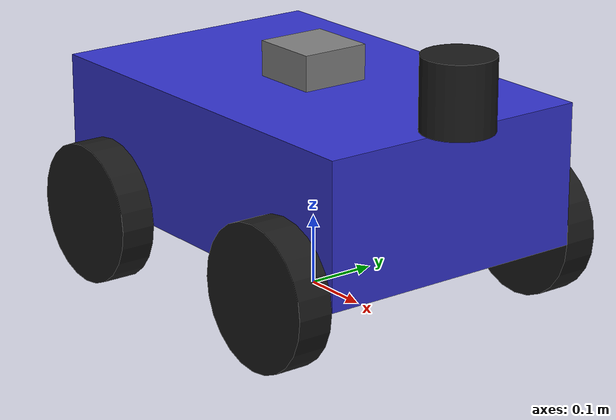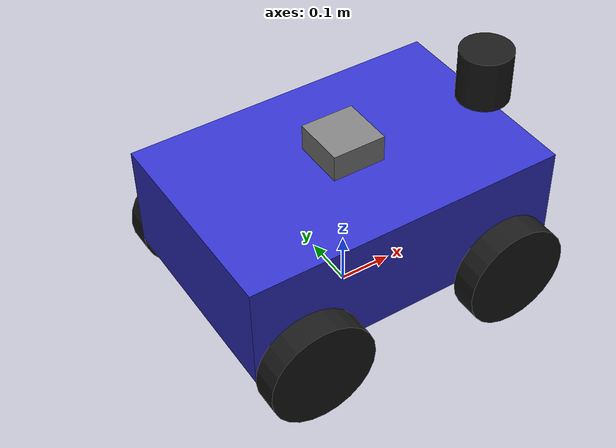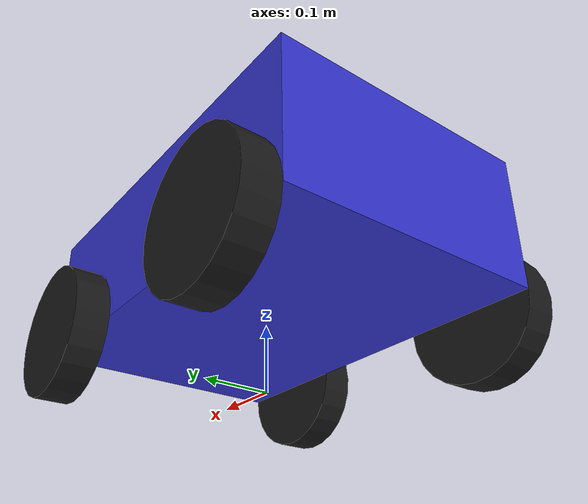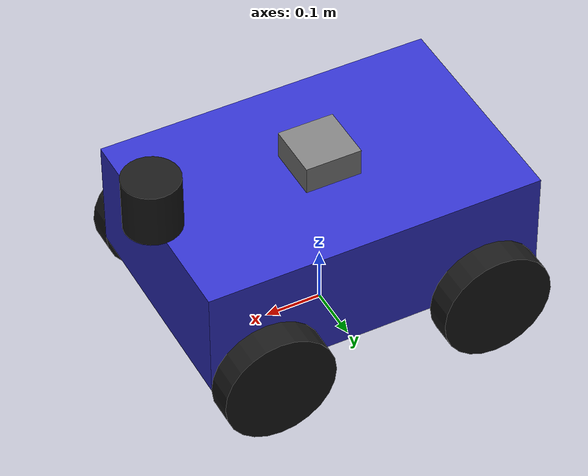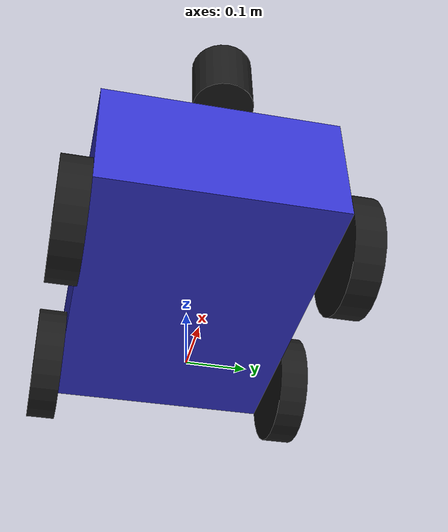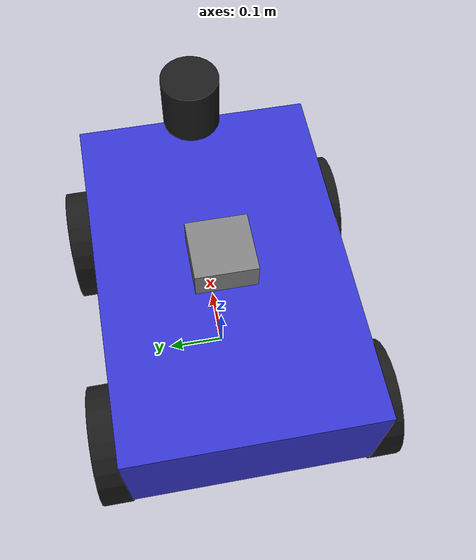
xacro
<?xml version="1.0"?>
<robot xmlns:xacro="http://www.ros.org/wiki/xacro" name="foundation_robot">

  <!-- Include common macros -->
  <xacro:include filename="$(find foundation_description)/urdf/common_macros.xacro"/>

  <!-- Robot parameters -->
  <xacro:property name="base_width" value="0.4"/>
  <xacro:property name="base_length" value="0.6"/>
  <xacro:property name="base_height" value="0.2"/>
  <xacro:property name="wheel_radius" value="0.1"/>
  <xacro:property name="wheel_width" value="0.05"/>

  <!-- Base link (root of the robot) -->
  <link name="base_link">
    <visual>
      <origin xyz="0 0 ${base_height/2}" rpy="0 0 0"/>
      <geometry>
        <box size="${base_length} ${base_width} ${base_height}"/>
      </geometry>
      <material name="blue">
        <color rgba="0.2 0.2 0.8 1.0"/>
      </material>
    </visual>

    <collision>
      <origin xyz="0 0 ${base_height/2}" rpy="0 0 0"/>
      <geometry>
        <box size="${base_length} ${base_width} ${base_height}"/>
      </geometry>
    </collision>

    <inertial>
      <origin xyz="0 0 ${base_height/2}" rpy="0 0 0"/>
      <mass value="20.0"/>
      <inertia ixx="0.6" ixy="0" ixz="0" iyy="1.0" iyz="0" izz="1.4"/>
    </inertial>
  </link>

  <!-- Footprint link (projection on ground) -->
  <link name="base_footprint"/>

  <joint name="base_footprint_joint" type="fixed">
    <parent link="base_footprint"/>
    <child link="base_link"/>
    <origin xyz="0 0 ${wheel_radius}" rpy="0 0 0"/>
  </joint>

  <!-- Wheels -->
  <xacro:wheel prefix="left_front"
               parent="base_link"
               x_offset="${base_length/2 - 0.1}"
               y_offset="${base_width/2 + wheel_width/2}"/>

  <xacro:wheel prefix="right_front"
               parent="base_link"
               x_offset="${base_length/2 - 0.1}"
               y_offset="${-base_width/2 - wheel_width/2}"/>

  <xacro:wheel prefix="left_rear"
               parent="base_link"
               x_offset="${-base_length/2 + 0.1}"
               y_offset="${base_width/2 + wheel_width/2}"/>

  <xacro:wheel prefix="right_rear"
               parent="base_link"
               x_offset="${-base_length/2 + 0.1}"
               y_offset="${-base_width/2 - wheel_width/2}"/>

  <!-- Sensor mount points -->
  <link name="sensor_mount">
    <visual>
      <origin xyz="0 0 0.05" rpy="0 0 0"/>
      <geometry>
        <cylinder radius="0.05" length="0.1"/>
      </geometry>
      <material name="black">
        <color rgba="0.1 0.1 0.1 1.0"/>
      </material>
    </visual>

    <collision>
      <origin xyz="0 0 0.05" rpy="0 0 0"/>
      <geometry>
        <cylinder radius="0.05" length="0.1"/>
      </geometry>
    </collision>

    <inertial>
      <origin xyz="0 0 0.05" rpy="0 0 0"/>
      <mass value="0.5"/>
      <inertia ixx="0.01" ixy="0" ixz="0" iyy="0.01" iyz="0" izz="0.01"/>
    </inertial>
  </link>

  <joint name="sensor_mount_joint" type="fixed">
    <parent link="base_link"/>
    <child link="sensor_mount"/>
    <origin xyz="${base_length/2} 0 ${base_height}" rpy="0 0 0"/>
  </joint>

  <!-- Manipulator mount points -->
  <link name="manipulator_mount">
    <visual>
      <origin xyz="0 0 0.025" rpy="0 0 0"/>
      <geometry>
        <box size="0.1 0.1 0.05"/>
      </geometry>
      <material name="gray">
        <color rgba="0.5 0.5 0.5 1.0"/>
      </material>
    </visual>

    <collision>
      <origin xyz="0 0 0.025" rpy="0 0 0"/>
      <geometry>
        <box size="0.1 0.1 0.05"/>
      </geometry>
    </collision>

    <inertial>
      <origin xyz="0 0 0.025" rpy="0 0 0"/>
      <mass value="1.0"/>
      <inertia ixx="0.01" ixy="0" ixz="0" iyy="0.01" iyz="0" izz="0.01"/>
    </inertial>
  </link>

  <joint name="manipulator_mount_joint" type="fixed">
    <parent link="base_link"/>
    <child link="manipulator_mount"/>
    <origin xyz="0 0 ${base_height}" rpy="0 0 0"/>
  </joint>

</robot>

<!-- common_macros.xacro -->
<robot xmlns:xacro="http://www.ros.org/wiki/xacro">

  <!-- Wheel macro -->
  <xacro:macro name="wheel" params="prefix parent x_offset y_offset">
    <link name="${prefix}_wheel">
      <visual>
        <origin xyz="0 0 0" rpy="${pi/2} 0 0"/>
        <geometry>
          <cylinder radius="${wheel_radius}" length="${wheel_width}"/>
        </geometry>
        <material name="black">
          <color rgba="0.1 0.1 0.1 1.0"/>
        </material>
      </visual>

      <collision>
        <origin xyz="0 0 0" rpy="${pi/2} 0 0"/>
        <geometry>
          <cylinder radius="${wheel_radius}" length="${wheel_width}"/>
        </geometry>
      </collision>

      <inertial>
        <origin xyz="0 0 0" rpy="${pi/2} 0 0"/>
        <mass value="2.0"/>
        <inertia ixx="0.05" ixy="0" ixz="0" iyy="0.05" iyz="0" izz="0.1"/>
      </inertial>
    </link>

    <joint name="${prefix}_wheel_joint" type="continuous">
      <parent link="${parent}"/>
      <child link="${prefix}_wheel"/>
      <origin xyz="${x_offset} ${y_offset} 0" rpy="0 0 0"/>
      <axis xyz="0 1 0"/>
    </joint>
  </xacro:macro>

  <!-- Sensor macro -->
  <xacro:macro name="sensor" params="name parent x_offset y_offset z_offset">
    <link name="${name}_link">
      <visual>
        <origin xyz="0 0 0" rpy="0 0 0"/>
        <geometry>
          <box size="0.05 0.05 0.05"/>
        </geometry>
        <material name="red">
          <color rgba="0.8 0.2 0.2 1.0"/>
        </material>
      </visual>

      <collision>
        <origin xyz="0 0 0" rpy="0 0 0"/>
        <geometry>
          <box size="0.05 0.05 0.05"/>
        </geometry>
      </collision>

      <inertial>
        <origin xyz="0 0 0" rpy="0 0 0"/>
        <mass value="0.1"/>
        <inertia ixx="0.001" ixy="0" ixz="0" iyy="0.001" iyz="0" izz="0.001"/>
      </inertial>
    </link>

    <joint name="${name}_joint" type="fixed">
      <parent link="${parent}"/>
      <child link="${name}_link"/>
      <origin xyz="${x_offset} ${y_offset} ${z_offset}" rpy="0 0 0"/>
    </joint>
  </xacro:macro>

  <!-- Material definitions -->
  <material name="blue">
    <color rgba="0.2 0.2 0.8 1.0"/>
  </material>

  <material name="red">
    <color rgba="0.8 0.2 0.2 1.0"/>
  </material>

  <material name="green">
    <color rgba="0.2 0.8 0.2 1.0"/>
  </material>

  <material name="black">
    <color rgba="0.1 0.1 0.1 1.0"/>
  </material>

  <material name="white">
    <color rgba="0.9 0.9 0.9 1.0"/>
  </material>

  <material name="gray">
    <color rgba="0.5 0.5 0.5 1.0"/>
  </material>

</robot>
